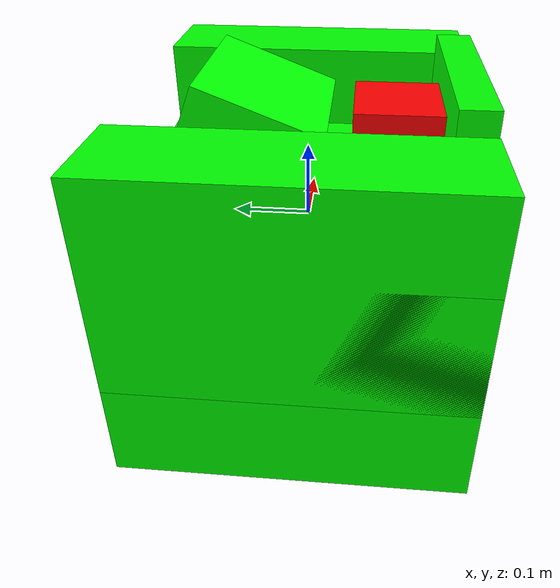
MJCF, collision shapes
<mujoco model="coffee_machine_13">
  <compiler autolimits="true" boundmass="0.01" angle="radian"/>
  <default>
    <default class="/">
      <default class="__VISUAL_MJT__">
        <geom contype="0" conaffinity="0" group="0"/>
      </default>
      <default class="__STRUCTURAL_MJT__">
        <geom contype="8" conaffinity="15" group="4" friction="0.90000000000000002 0.90000000000000002 0.001" solref="0.025000000000000001 1" solimp="0.998 0.998 0.001"/>
      </default>
      <default class="__DYNAMIC_MJT__">
        <geom contype="1" conaffinity="15" group="4" friction="0.90000000000000002 0.90000000000000002 0.001" solref="0.025000000000000001 1" solimp="0.998 0.998 0.001"/>
      </default>
    </default>
  </default>
  <asset>
    <material name="material_coffee_machine_backup_mat" class="/" specular="0.5" shininess="0.5" rgba="0.5 0.5 0.5 1"/>
    <material name="material_Coffee_Machine_Readout_Mat_Off" class="/" specular="0.5" shininess="0.5" rgba="0 0 0 1"/>
    <texture name="Coffee_Machine_Decal_Mat" type="2d" file="Coffee_Machine_Decal_AlbedoTransparency.png"/>
    <material name="material_Coffee_Machine_Decal_Mat" class="/" texture="Coffee_Machine_Decal_Mat" specular="0.5" shininess="0.5" rgba="1 1 1 1"/>
    <texture name="Coffee_Machine_Metal_Mat" type="2d" file="MetalBumpy_AlbedoTransparency.png"/>
    <material name="material_Coffee_Machine_Metal_Mat" class="/" texture="Coffee_Machine_Metal_Mat" specular="0.5" shininess="0.5" rgba="0.66176469999999998 0.66176469999999998 0.66176469999999998 1"/>
    <texture name="Coffee_Machine_Secondary2_Color_Mat" type="2d" file="BrushedIron_AlbedoTransparency.png"/>
    <material name="material_Coffee_Machine_Secondary2_Color_Mat" class="/" texture="Coffee_Machine_Secondary2_Color_Mat" specular="0.5" shininess="0.5" rgba="0.80882350000000003 0.80882350000000003 0.80882350000000003 1"/>
    <texture name="Coffee_Machine_Primary2_Color_Mat" type="2d" file="BumpyPlastic_Albedo.png"/>
    <material name="material_Coffee_Machine_Primary2_Color_Mat" class="/" texture="Coffee_Machine_Primary2_Color_Mat" specular="0.5" shininess="0.5" rgba="0.6323529 0.46849269999999998 0.29292820000000003 1"/>
    <mesh name="coffee_machine_13_coffee_machine_12_0" class="/" file="coffee_machine_13_coffee_machine_12/coffee_machine_13_coffee_machine_12_0.obj" scale="1 1 1"/>
    <mesh name="coffee_machine_13_coffee_machine_12_1" class="/" file="coffee_machine_13_coffee_machine_12/coffee_machine_13_coffee_machine_12_1.obj" scale="1 1 1"/>
    <mesh name="coffee_machine_13_coffee_machine_12_2" class="/" file="coffee_machine_13_coffee_machine_12/coffee_machine_13_coffee_machine_12_2.obj" scale="1 1 1"/>
    <mesh name="coffee_machine_13_coffee_machine_12_3" class="/" file="coffee_machine_13_coffee_machine_12/coffee_machine_13_coffee_machine_12_3.obj" scale="1 1 1"/>
    <mesh name="coffee_machine_13_coffee_machine_12_4" class="/" file="coffee_machine_13_coffee_machine_12/coffee_machine_13_coffee_machine_12_4.obj" scale="1 1 1"/>
    <mesh name="coffee_machine_13_coffee_machine_12_5" class="/" file="coffee_machine_13_coffee_machine_12/coffee_machine_13_coffee_machine_12_5.obj" scale="1 1 1"/>
  </asset>
  <worldbody>
    <body name="coffee_machine_13">
      <joint name="coffee_machine_13_free" class="/" type="free" pos="0 0 0" axis="0 0 1" stiffness="0" range="0 0" armature="0" damping="0.10000000000000001" frictionloss="0"/>
      <body name="coffee_machine_13_coffee_machine_12" pos="-0 -0.20938999999999999 -0.015869999999999999" quat="1 0 0 0">
        <geom name="coffee_machine_13_coffee_machine_12_0" class="__VISUAL_MJT__" type="mesh" material="material_coffee_machine_backup_mat" shellinertia="true" mesh="coffee_machine_13_coffee_machine_12_0"/>
        <geom name="coffee_machine_13_coffee_machine_12_1" class="__VISUAL_MJT__" type="mesh" material="material_Coffee_Machine_Readout_Mat_Off" shellinertia="false" mesh="coffee_machine_13_coffee_machine_12_1"/>
        <geom name="coffee_machine_13_coffee_machine_12_2" class="__VISUAL_MJT__" type="mesh" material="material_Coffee_Machine_Decal_Mat" shellinertia="true" mesh="coffee_machine_13_coffee_machine_12_2"/>
        <geom name="coffee_machine_13_coffee_machine_12_3" class="__VISUAL_MJT__" type="mesh" material="material_Coffee_Machine_Metal_Mat" shellinertia="false" mesh="coffee_machine_13_coffee_machine_12_3"/>
        <geom name="coffee_machine_13_coffee_machine_12_4" class="__VISUAL_MJT__" type="mesh" material="material_Coffee_Machine_Secondary2_Color_Mat" shellinertia="false" mesh="coffee_machine_13_coffee_machine_12_4"/>
        <geom name="coffee_machine_13_coffee_machine_12_5" class="__VISUAL_MJT__" type="mesh" material="material_Coffee_Machine_Primary2_Color_Mat" shellinertia="false" mesh="coffee_machine_13_coffee_machine_12_5"/>
        <site name="coffee_machine_13_Receptacle_0" class="/" type="box" rgba="1 0 0 1" size="0.058001838624477386 0.054670393466949463 0.046775400638580322" pos="-0 0.097470395267009735 0.13739030063152313" quat="1 0 0 0"/>
        <geom name="coffee_machine_13_PrimitiveCollider_0" class="__DYNAMIC_MJT__" type="box" size="0.26959598064422607 0.20939046144485474 0.1421053409576416" rgba="0 1 0 1" pos="-0 0.20939046144485474 -0.05427241325378418" quat="1 0 0 0"/>
        <geom name="coffee_machine_13_PrimitiveCollider_1" class="__DYNAMIC_MJT__" type="box" size="0.061994254589080811 0.20939046144485474 0.13451480865478516" rgba="0 1 0 1" pos="-0.20760172605514526 0.20939046144485474 0.063381195068359375" quat="1 0 0 0"/>
        <geom name="coffee_machine_13_PrimitiveCollider_2" class="__DYNAMIC_MJT__" type="box" size="0.061994254589080811 0.20939046144485474 0.13451480865478516" rgba="0 1 0 1" pos="0.20759826898574829 0.20939046144485474 0.063381195068359375" quat="1 0 0 0"/>
        <geom name="coffee_machine_13_PrimitiveCollider_3" class="__DYNAMIC_MJT__" type="box" size="0.14077755808830261 0.022283196449279785 0.11933374404907227" rgba="0 1 0 1" pos="-0 0.022283196449279785 0.10588836669921875" quat="1 0 0 0"/>
        <geom name="coffee_machine_13_PrimitiveCollider_4" class="__DYNAMIC_MJT__" type="box" size="0.10372096300125122 0.080094695091247559 0.11933374404907227" rgba="0 1 0 1" pos="-0 0.29862338304519653 0.087840437889099121" quat="0.98276251554489136 0.18487243354320526 0 0"/>
      </body>
    </body>
  </worldbody>
</mujoco>
